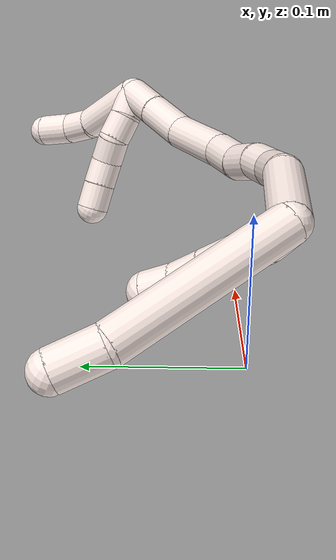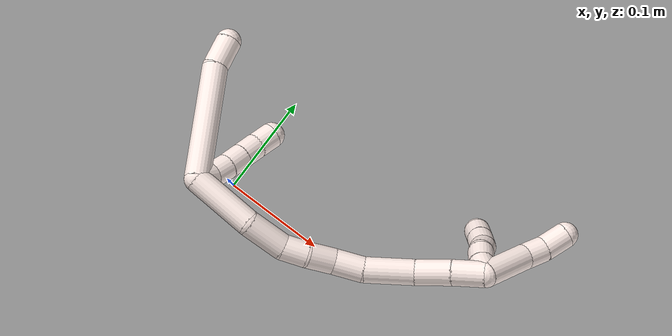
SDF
<sdf version="1.7">
 <world name="default">
  <model name="11">
   <static>0</static>
   <link name="11">
    <collision name="collision-cylinder-e_1_2_8">
     <pose>-0.033128 0.040135 -0.028809 -2.19338 -0.590683 1.07035</pose>
     <geometry><cylinder><radius>0.0125</radius><length>0.118966</length></cylinder></geometry>
     <surface>
      <friction><ode><mu>1.16</mu><mu2>1.16</mu2><slip1>0</slip1><slip2>0</slip2></ode></friction>
      <contact><ode><kp>1e+06</kp><kd>1</kd><max_vel>0</max_vel><min_depth>0.001</min_depth></ode></contact>
     </surface>
    </collision>
    <visual name="visual-cylinder-e_1_2_8">
     <pose>-0.033128 0.040135 -0.028809 -2.19338 -0.590683 1.07035</pose>
     <geometry><cylinder><radius>0.0125</radius><length>0.118966</length></cylinder></geometry>
     <material><ambient>1 0.933333 0.909804 1</ambient></material>
    </visual>
    <collision name="collision-cylinder-e_2_8_6">
     <pose>-0.070904 0.091962 -0.0667 -2.23116 -0.304217 0.606971</pose>
     <geometry><cylinder><radius>0.0125</radius><length>0.031034</length></cylinder></geometry>
     <surface>
      <friction><ode><mu>1.16</mu><mu2>1.16</mu2><slip1>0</slip1><slip2>0</slip2></ode></friction>
      <contact><ode><kp>1e+06</kp><kd>1</kd><max_vel>0</max_vel><min_depth>0.001</min_depth></ode></contact>
     </surface>
    </collision>
    <visual name="visual-cylinder-e_2_8_6">
     <pose>-0.070904 0.091962 -0.0667 -2.23116 -0.304217 0.606971</pose>
     <geometry><cylinder><radius>0.0125</radius><length>0.031034</length></cylinder></geometry>
     <material><ambient>1 0.933333 0.909804 1</ambient></material>
    </visual>
    <collision name="collision-cylinder-e_1_2_9">
     <pose>0.0018 0.002648 -0.009474 -2.86903 0.180939 -1.16889</pose>
     <geometry><cylinder><radius>0.0125</radius><length>0.02</length></cylinder></geometry>
     <surface>
      <friction><ode><mu>1.16</mu><mu2>1.16</mu2><slip1>0</slip1><slip2>0</slip2></ode></friction>
      <contact><ode><kp>1e+06</kp><kd>1</kd><max_vel>0</max_vel><min_depth>0.001</min_depth></ode></contact>
     </surface>
    </collision>
    <visual name="visual-cylinder-e_1_2_9">
     <pose>0.0018 0.002648 -0.009474 -2.86903 0.180939 -1.16889</pose>
     <geometry><cylinder><radius>0.0125</radius><length>0.02</length></cylinder></geometry>
     <material><ambient>1 0.933333 0.909804 1</ambient></material>
    </visual>
    <collision name="collision-cylinder-e_2_9_10">
     <pose>0.004571 0.010765 -0.027262 -2.55978 0.097302 -0.322427</pose>
     <geometry><cylinder><radius>0.0125</radius><length>0.02</length></cylinder></geometry>
     <surface>
      <friction><ode><mu>1.16</mu><mu2>1.16</mu2><slip1>0</slip1><slip2>0</slip2></ode></friction>
      <contact><ode><kp>1e+06</kp><kd>1</kd><max_vel>0</max_vel><min_depth>0.001</min_depth></ode></contact>
     </surface>
    </collision>
    <visual name="visual-cylinder-e_2_9_10">
     <pose>0.004571 0.010765 -0.027262 -2.55978 0.097302 -0.322427</pose>
     <geometry><cylinder><radius>0.0125</radius><length>0.02</length></cylinder></geometry>
     <material><ambient>1 0.933333 0.909804 1</ambient></material>
    </visual>
    <collision name="collision-cylinder-e_3_10_11">
     <pose>0.006087 0.022139 -0.04363 -2.50888 0.054487 -0.166106</pose>
     <geometry><cylinder><radius>0.0125</radius><length>0.02</length></cylinder></geometry>
     <surface>
      <friction><ode><mu>1.16</mu><mu2>1.16</mu2><slip1>0</slip1><slip2>0</slip2></ode></friction>
      <contact><ode><kp>1e+06</kp><kd>1</kd><max_vel>0</max_vel><min_depth>0.001</min_depth></ode></contact>
     </surface>
    </collision>
    <visual name="visual-cylinder-e_3_10_11">
     <pose>0.006087 0.022139 -0.04363 -2.50888 0.054487 -0.166106</pose>
     <geometry><cylinder><radius>0.0125</radius><length>0.02</length></cylinder></geometry>
     <material><ambient>1 0.933333 0.909804 1</ambient></material>
    </visual>
    <collision name="collision-cylinder-e_4_11_12">
     <pose>0.007171 0.033956 -0.05973 -2.50802 0.054022 -0.164458</pose>
     <geometry><cylinder><radius>0.0125</radius><length>0.02</length></cylinder></geometry>
     <surface>
      <friction><ode><mu>1.16</mu><mu2>1.16</mu2><slip1>0</slip1><slip2>0</slip2></ode></friction>
      <contact><ode><kp>1e+06</kp><kd>1</kd><max_vel>0</max_vel><min_depth>0.001</min_depth></ode></contact>
     </surface>
    </collision>
    <visual name="visual-cylinder-e_4_11_12">
     <pose>0.007171 0.033956 -0.05973 -2.50802 0.054022 -0.164458</pose>
     <geometry><cylinder><radius>0.0125</radius><length>0.02</length></cylinder></geometry>
     <material><ambient>1 0.933333 0.909804 1</ambient></material>
    </visual>
    <collision name="collision-cylinder-e_5_12_5">
     <pose>0.009039 0.04664 -0.075014 -2.38933 0.133143 -0.334474</pose>
     <geometry><cylinder><radius>0.0125</radius><length>0.02</length></cylinder></geometry>
     <surface>
      <friction><ode><mu>1.16</mu><mu2>1.16</mu2><slip1>0</slip1><slip2>0</slip2></ode></friction>
      <contact><ode><kp>1e+06</kp><kd>1</kd><max_vel>0</max_vel><min_depth>0.001</min_depth></ode></contact>
     </surface>
    </collision>
    <visual name="visual-cylinder-e_5_12_5">
     <pose>0.009039 0.04664 -0.075014 -2.38933 0.133143 -0.334474</pose>
     <geometry><cylinder><radius>0.0125</radius><length>0.02</length></cylinder></geometry>
     <material><ambient>1 0.933333 0.909804 1</ambient></material>
    </visual>
    <collision name="collision-cylinder-e_1_2_13">
     <pose>0.031283 -0.003079 -0.005043 2.59336 1.38412 2.48741</pose>
     <geometry><cylinder><radius>0.0125</radius><length>0.063673</length></cylinder></geometry>
     <surface>
      <friction><ode><mu>1.16</mu><mu2>1.16</mu2><slip1>0</slip1><slip2>0</slip2></ode></friction>
      <contact><ode><kp>1e+06</kp><kd>1</kd><max_vel>0</max_vel><min_depth>0.001</min_depth></ode></contact>
     </surface>
    </collision>
    <visual name="visual-cylinder-e_1_2_13">
     <pose>0.031283 -0.003079 -0.005043 2.59336 1.38412 2.48741</pose>
     <geometry><cylinder><radius>0.0125</radius><length>0.063673</length></cylinder></geometry>
     <material><ambient>1 0.933333 0.909804 1</ambient></material>
    </visual>
    <collision name="collision-cylinder-e_2_13_14">
     <pose>0.079751 -0.00842 -0.019667 2.90989 1.05057 2.74531</pose>
     <geometry><cylinder><radius>0.0125</radius><length>0.039609</length></cylinder></geometry>
     <surface>
      <friction><ode><mu>1.16</mu><mu2>1.16</mu2><slip1>0</slip1><slip2>0</slip2></ode></friction>
      <contact><ode><kp>1e+06</kp><kd>1</kd><max_vel>0</max_vel><min_depth>0.001</min_depth></ode></contact>
     </surface>
    </collision>
    <visual name="visual-cylinder-e_2_13_14">
     <pose>0.079751 -0.00842 -0.019667 2.90989 1.05057 2.74531</pose>
     <geometry><cylinder><radius>0.0125</radius><length>0.039609</length></cylinder></geometry>
     <material><ambient>1 0.933333 0.909804 1</ambient></material>
    </visual>
    <collision name="collision-cylinder-e_3_14_15">
     <pose>0.107541 -0.008039 -0.034565 -2.68063 1.06045 -2.3801</pose>
     <geometry><cylinder><radius>0.0125</radius><length>0.024309</length></cylinder></geometry>
     <surface>
      <friction><ode><mu>1.16</mu><mu2>1.16</mu2><slip1>0</slip1><slip2>0</slip2></ode></friction>
      <contact><ode><kp>1e+06</kp><kd>1</kd><max_vel>0</max_vel><min_depth>0.001</min_depth></ode></contact>
     </surface>
    </collision>
    <visual name="visual-cylinder-e_3_14_15">
     <pose>0.107541 -0.008039 -0.034565 -2.68063 1.06045 -2.3801</pose>
     <geometry><cylinder><radius>0.0125</radius><length>0.024309</length></cylinder></geometry>
     <material><ambient>1 0.933333 0.909804 1</ambient></material>
    </visual>
    <collision name="collision-cylinder-e_4_15_16">
     <pose>0.128112 -0.002755 -0.048358 -2.83921 0.843027 -2.4865</pose>
     <geometry><cylinder><radius>0.0125</radius><length>0.026691</length></cylinder></geometry>
     <surface>
      <friction><ode><mu>1.16</mu><mu2>1.16</mu2><slip1>0</slip1><slip2>0</slip2></ode></friction>
      <contact><ode><kp>1e+06</kp><kd>1</kd><max_vel>0</max_vel><min_depth>0.001</min_depth></ode></contact>
     </surface>
    </collision>
    <visual name="visual-cylinder-e_4_15_16">
     <pose>0.128112 -0.002755 -0.048358 -2.83921 0.843027 -2.4865</pose>
     <geometry><cylinder><radius>0.0125</radius><length>0.026691</length></cylinder></geometry>
     <material><ambient>1 0.933333 0.909804 1</ambient></material>
    </visual>
    <collision name="collision-cylinder-e_5_16_17">
     <pose>0.151296 0.004008 -0.062318 -2.49751 1.09218 -2.13743</pose>
     <geometry><cylinder><radius>0.0125</radius><length>0.029786</length></cylinder></geometry>
     <surface>
      <friction><ode><mu>1.16</mu><mu2>1.16</mu2><slip1>0</slip1><slip2>0</slip2></ode></friction>
      <contact><ode><kp>1e+06</kp><kd>1</kd><max_vel>0</max_vel><min_depth>0.001</min_depth></ode></contact>
     </surface>
    </collision>
    <visual name="visual-cylinder-e_5_16_17">
     <pose>0.151296 0.004008 -0.062318 -2.49751 1.09218 -2.13743</pose>
     <geometry><cylinder><radius>0.0125</radius><length>0.029786</length></cylinder></geometry>
     <material><ambient>1 0.933333 0.909804 1</ambient></material>
    </visual>
    <collision name="collision-cylinder-e_6_17_18">
     <pose>0.183831 0.019969 -0.076474 -2.20283 0.920964 -1.5486</pose>
     <geometry><cylinder><radius>0.0125</radius><length>0.048519</length></cylinder></geometry>
     <surface>
      <friction><ode><mu>1.16</mu><mu2>1.16</mu2><slip1>0</slip1><slip2>0</slip2></ode></friction>
      <contact><ode><kp>1e+06</kp><kd>1</kd><max_vel>0</max_vel><min_depth>0.001</min_depth></ode></contact>
     </surface>
    </collision>
    <visual name="visual-cylinder-e_6_17_18">
     <pose>0.183831 0.019969 -0.076474 -2.20283 0.920964 -1.5486</pose>
     <geometry><cylinder><radius>0.0125</radius><length>0.048519</length></cylinder></geometry>
     <material><ambient>1 0.933333 0.909804 1</ambient></material>
    </visual>
    <collision name="collision-cylinder-e_7_18_19">
     <pose>0.217461 0.041982 -0.087897 -1.835 0.93631 -1.1676</pose>
     <geometry><cylinder><radius>0.0125</radius><length>0.035548</length></cylinder></geometry>
     <surface>
      <friction><ode><mu>1.16</mu><mu2>1.16</mu2><slip1>0</slip1><slip2>0</slip2></ode></friction>
      <contact><ode><kp>1e+06</kp><kd>1</kd><max_vel>0</max_vel><min_depth>0.001</min_depth></ode></contact>
     </surface>
    </collision>
    <visual name="visual-cylinder-e_7_18_19">
     <pose>0.217461 0.041982 -0.087897 -1.835 0.93631 -1.1676</pose>
     <geometry><cylinder><radius>0.0125</radius><length>0.035548</length></cylinder></geometry>
     <material><ambient>1 0.933333 0.909804 1</ambient></material>
    </visual>
    <collision name="collision-cylinder-e_8_19_1">
     <pose>0.244984 0.060617 -0.093425 -1.8878 0.977453 -1.26648</pose>
     <geometry><cylinder><radius>0.0125</radius><length>0.031865</length></cylinder></geometry>
     <surface>
      <friction><ode><mu>1.16</mu><mu2>1.16</mu2><slip1>0</slip1><slip2>0</slip2></ode></friction>
      <contact><ode><kp>1e+06</kp><kd>1</kd><max_vel>0</max_vel><min_depth>0.001</min_depth></ode></contact>
     </surface>
    </collision>
    <visual name="visual-cylinder-e_8_19_1">
     <pose>0.244984 0.060617 -0.093425 -1.8878 0.977453 -1.26648</pose>
     <geometry><cylinder><radius>0.0125</radius><length>0.031865</length></cylinder></geometry>
     <material><ambient>1 0.933333 0.909804 1</ambient></material>
    </visual>
    <collision name="collision-cylinder-e_1_1_20">
     <pose>0.263806 0.080715 -0.119077 -2.6711 0.215309 -0.847192</pose>
     <geometry><cylinder><radius>0.0125</radius><length>0.052539</length></cylinder></geometry>
     <surface>
      <friction><ode><mu>1.16</mu><mu2>1.16</mu2><slip1>0</slip1><slip2>0</slip2></ode></friction>
      <contact><ode><kp>1e+06</kp><kd>1</kd><max_vel>0</max_vel><min_depth>0.001</min_depth></ode></contact>
     </surface>
    </collision>
    <visual name="visual-cylinder-e_1_1_20">
     <pose>0.263806 0.080715 -0.119077 -2.6711 0.215309 -0.847192</pose>
     <geometry><cylinder><radius>0.0125</radius><length>0.052539</length></cylinder></geometry>
     <material><ambient>1 0.933333 0.909804 1</ambient></material>
    </visual>
    <collision name="collision-cylinder-e_2_20_21">
     <pose>0.273359 0.099181 -0.149475 -2.40431 0.369928 -0.902083</pose>
     <geometry><cylinder><radius>0.0125</radius><length>0.0218</length></cylinder></geometry>
     <surface>
      <friction><ode><mu>1.16</mu><mu2>1.16</mu2><slip1>0</slip1><slip2>0</slip2></ode></friction>
      <contact><ode><kp>1e+06</kp><kd>1</kd><max_vel>0</max_vel><min_depth>0.001</min_depth></ode></contact>
     </surface>
    </collision>
    <visual name="visual-cylinder-e_2_20_21">
     <pose>0.273359 0.099181 -0.149475 -2.40431 0.369928 -0.902083</pose>
     <geometry><cylinder><radius>0.0125</radius><length>0.0218</length></cylinder></geometry>
     <material><ambient>1 0.933333 0.909804 1</ambient></material>
    </visual>
    <collision name="collision-cylinder-e_3_21_4">
     <pose>0.280846 0.116036 -0.164181 -2.19261 0.279993 -0.535541</pose>
     <geometry><cylinder><radius>0.0125</radius><length>0.025662</length></cylinder></geometry>
     <surface>
      <friction><ode><mu>1.16</mu><mu2>1.16</mu2><slip1>0</slip1><slip2>0</slip2></ode></friction>
      <contact><ode><kp>1e+06</kp><kd>1</kd><max_vel>0</max_vel><min_depth>0.001</min_depth></ode></contact>
     </surface>
    </collision>
    <visual name="visual-cylinder-e_3_21_4">
     <pose>0.280846 0.116036 -0.164181 -2.19261 0.279993 -0.535541</pose>
     <geometry><cylinder><radius>0.0125</radius><length>0.025662</length></cylinder></geometry>
     <material><ambient>1 0.933333 0.909804 1</ambient></material>
    </visual>
    <collision name="collision-cylinder-e_1_1_22">
     <pose>0.25176 0.069846 -0.10382 -3.04149 -0.698854 2.86834</pose>
     <geometry><cylinder><radius>0.0125</radius><length>0.02</length></cylinder></geometry>
     <surface>
      <friction><ode><mu>1.16</mu><mu2>1.16</mu2><slip1>0</slip1><slip2>0</slip2></ode></friction>
      <contact><ode><kp>1e+06</kp><kd>1</kd><max_vel>0</max_vel><min_depth>0.001</min_depth></ode></contact>
     </surface>
    </collision>
    <visual name="visual-cylinder-e_1_1_22">
     <pose>0.25176 0.069846 -0.10382 -3.04149 -0.698854 2.86834</pose>
     <geometry><cylinder><radius>0.0125</radius><length>0.02</length></cylinder></geometry>
     <material><ambient>1 0.933333 0.909804 1</ambient></material>
    </visual>
    <collision name="collision-cylinder-e_2_22_23">
     <pose>0.240195 0.07237 -0.119838 -2.93528 -0.538853 2.42425</pose>
     <geometry><cylinder><radius>0.0125</radius><length>0.02</length></cylinder></geometry>
     <surface>
      <friction><ode><mu>1.16</mu><mu2>1.16</mu2><slip1>0</slip1><slip2>0</slip2></ode></friction>
      <contact><ode><kp>1e+06</kp><kd>1</kd><max_vel>0</max_vel><min_depth>0.001</min_depth></ode></contact>
     </surface>
    </collision>
    <visual name="visual-cylinder-e_2_22_23">
     <pose>0.240195 0.07237 -0.119838 -2.93528 -0.538853 2.42425</pose>
     <geometry><cylinder><radius>0.0125</radius><length>0.02</length></cylinder></geometry>
     <material><ambient>1 0.933333 0.909804 1</ambient></material>
    </visual>
    <collision name="collision-cylinder-e_3_23_24">
     <pose>0.232473 0.073981 -0.137897 3.1264 -0.262047 -3.02642</pose>
     <geometry><cylinder><radius>0.0125</radius><length>0.02</length></cylinder></geometry>
     <surface>
      <friction><ode><mu>1.16</mu><mu2>1.16</mu2><slip1>0</slip1><slip2>0</slip2></ode></friction>
      <contact><ode><kp>1e+06</kp><kd>1</kd><max_vel>0</max_vel><min_depth>0.001</min_depth></ode></contact>
     </surface>
    </collision>
    <visual name="visual-cylinder-e_3_23_24">
     <pose>0.232473 0.073981 -0.137897 3.1264 -0.262047 -3.02642</pose>
     <geometry><cylinder><radius>0.0125</radius><length>0.02</length></cylinder></geometry>
     <material><ambient>1 0.933333 0.909804 1</ambient></material>
    </visual>
    <collision name="collision-cylinder-e_4_24_25">
     <pose>0.224418 0.073993 -0.155928 -3.12268 -0.578138 3.07803</pose>
     <geometry><cylinder><radius>0.0125</radius><length>0.02</length></cylinder></geometry>
     <surface>
      <friction><ode><mu>1.16</mu><mu2>1.16</mu2><slip1>0</slip1><slip2>0</slip2></ode></friction>
      <contact><ode><kp>1e+06</kp><kd>1</kd><max_vel>0</max_vel><min_depth>0.001</min_depth></ode></contact>
     </surface>
    </collision>
    <visual name="visual-cylinder-e_4_24_25">
     <pose>0.224418 0.073993 -0.155928 -3.12268 -0.578138 3.07803</pose>
     <geometry><cylinder><radius>0.0125</radius><length>0.02</length></cylinder></geometry>
     <material><ambient>1 0.933333 0.909804 1</ambient></material>
    </visual>
    <collision name="collision-cylinder-e_5_25_3">
     <pose>0.213634 0.074044 -0.172768 3.12894 -0.560908 -3.09768</pose>
     <geometry><cylinder><radius>0.0125</radius><length>0.02</length></cylinder></geometry>
     <surface>
      <friction><ode><mu>1.16</mu><mu2>1.16</mu2><slip1>0</slip1><slip2>0</slip2></ode></friction>
      <contact><ode><kp>1e+06</kp><kd>1</kd><max_vel>0</max_vel><min_depth>0.001</min_depth></ode></contact>
     </surface>
    </collision>
    <visual name="visual-cylinder-e_5_25_3">
     <pose>0.213634 0.074044 -0.172768 3.12894 -0.560908 -3.09768</pose>
     <geometry><cylinder><radius>0.0125</radius><length>0.02</length></cylinder></geometry>
     <material><ambient>1 0.933333 0.909804 1</ambient></material>
    </visual>
    <collision name="collision-sphere-3">
     <pose>0.208314 0.073937 -0.181235 0 -0 0</pose>
     <geometry><sphere><radius>0.0125</radius></sphere></geometry>
     <surface>
      <friction><ode><mu>1.16</mu><mu2>1.16</mu2><slip1>0</slip1><slip2>0</slip2></ode></friction>
      <contact><ode><kp>1e+06</kp><kd>1</kd><max_vel>0</max_vel><min_depth>0.001</min_depth></ode></contact>
     </surface>
    </collision>
    <visual name="visual-sphere-3">
     <pose>0.208314 0.073937 -0.181235 0 -0 0</pose>
     <geometry><sphere><radius>0.0125</radius></sphere></geometry>
     <material><ambient>1 0.933333 0.909804 1</ambient></material>
    </visual>
    <collision name="collision-sphere-25">
     <pose>0.218953 0.074151 -0.164301 0 -0 0</pose>
     <geometry><sphere><radius>0.0125</radius></sphere></geometry>
     <surface>
      <friction><ode><mu>1.16</mu><mu2>1.16</mu2><slip1>0</slip1><slip2>0</slip2></ode></friction>
      <contact><ode><kp>1e+06</kp><kd>1</kd><max_vel>0</max_vel><min_depth>0.001</min_depth></ode></contact>
     </surface>
    </collision>
    <visual name="visual-sphere-25">
     <pose>0.218953 0.074151 -0.164301 0 -0 0</pose>
     <geometry><sphere><radius>0.0125</radius></sphere></geometry>
     <material><ambient>1 0.933333 0.909804 1</ambient></material>
    </visual>
    <collision name="collision-sphere-24">
     <pose>0.229882 0.073834 -0.147554 0 -0 0</pose>
     <geometry><sphere><radius>0.0125</radius></sphere></geometry>
     <surface>
      <friction><ode><mu>1.16</mu><mu2>1.16</mu2><slip1>0</slip1><slip2>0</slip2></ode></friction>
      <contact><ode><kp>1e+06</kp><kd>1</kd><max_vel>0</max_vel><min_depth>0.001</min_depth></ode></contact>
     </surface>
    </collision>
    <visual name="visual-sphere-24">
     <pose>0.229882 0.073834 -0.147554 0 -0 0</pose>
     <geometry><sphere><radius>0.0125</radius></sphere></geometry>
     <material><ambient>1 0.933333 0.909804 1</ambient></material>
    </visual>
    <collision name="collision-sphere-23">
     <pose>0.235064 0.074128 -0.128239 0 -0 0</pose>
     <geometry><sphere><radius>0.0125</radius></sphere></geometry>
     <surface>
      <friction><ode><mu>1.16</mu><mu2>1.16</mu2><slip1>0</slip1><slip2>0</slip2></ode></friction>
      <contact><ode><kp>1e+06</kp><kd>1</kd><max_vel>0</max_vel><min_depth>0.001</min_depth></ode></contact>
     </surface>
    </collision>
    <visual name="visual-sphere-23">
     <pose>0.235064 0.074128 -0.128239 0 -0 0</pose>
     <geometry><sphere><radius>0.0125</radius></sphere></geometry>
     <material><ambient>1 0.933333 0.909804 1</ambient></material>
    </visual>
    <collision name="collision-sphere-22">
     <pose>0.245327 0.070611 -0.111437 0 -0 0</pose>
     <geometry><sphere><radius>0.0125</radius></sphere></geometry>
     <surface>
      <friction><ode><mu>1.16</mu><mu2>1.16</mu2><slip1>0</slip1><slip2>0</slip2></ode></friction>
      <contact><ode><kp>1e+06</kp><kd>1</kd><max_vel>0</max_vel><min_depth>0.001</min_depth></ode></contact>
     </surface>
    </collision>
    <visual name="visual-sphere-22">
     <pose>0.245327 0.070611 -0.111437 0 -0 0</pose>
     <geometry><sphere><radius>0.0125</radius></sphere></geometry>
     <material><ambient>1 0.933333 0.909804 1</ambient></material>
    </visual>
    <collision name="collision-sphere-4">
     <pose>0.284392 0.126059 -0.171364 0 -0 0</pose>
     <geometry><sphere><radius>0.0125</radius></sphere></geometry>
     <surface>
      <friction><ode><mu>1.16</mu><mu2>1.16</mu2><slip1>0</slip1><slip2>0</slip2></ode></friction>
      <contact><ode><kp>1e+06</kp><kd>1</kd><max_vel>0</max_vel><min_depth>0.001</min_depth></ode></contact>
     </surface>
    </collision>
    <visual name="visual-sphere-4">
     <pose>0.284392 0.126059 -0.171364 0 -0 0</pose>
     <geometry><sphere><radius>0.0125</radius></sphere></geometry>
     <material><ambient>1 0.933333 0.909804 1</ambient></material>
    </visual>
    <collision name="collision-sphere-21">
     <pose>0.2773 0.106013 -0.156998 0 -0 0</pose>
     <geometry><sphere><radius>0.0125</radius></sphere></geometry>
     <surface>
      <friction><ode><mu>1.16</mu><mu2>1.16</mu2><slip1>0</slip1><slip2>0</slip2></ode></friction>
      <contact><ode><kp>1e+06</kp><kd>1</kd><max_vel>0</max_vel><min_depth>0.001</min_depth></ode></contact>
     </surface>
    </collision>
    <visual name="visual-sphere-21">
     <pose>0.2773 0.106013 -0.156998 0 -0 0</pose>
     <geometry><sphere><radius>0.0125</radius></sphere></geometry>
     <material><ambient>1 0.933333 0.909804 1</ambient></material>
    </visual>
    <collision name="collision-sphere-20">
     <pose>0.269418 0.092349 -0.141951 0 -0 0</pose>
     <geometry><sphere><radius>0.0125</radius></sphere></geometry>
     <surface>
      <friction><ode><mu>1.16</mu><mu2>1.16</mu2><slip1>0</slip1><slip2>0</slip2></ode></friction>
      <contact><ode><kp>1e+06</kp><kd>1</kd><max_vel>0</max_vel><min_depth>0.001</min_depth></ode></contact>
     </surface>
    </collision>
    <visual name="visual-sphere-20">
     <pose>0.269418 0.092349 -0.141951 0 -0 0</pose>
     <geometry><sphere><radius>0.0125</radius></sphere></geometry>
     <material><ambient>1 0.933333 0.909804 1</ambient></material>
    </visual>
    <collision name="collision-sphere-11">
     <pose>0.006631 0.028044 -0.051682 0 -0 0</pose>
     <geometry><sphere><radius>0.0125</radius></sphere></geometry>
     <surface>
      <friction><ode><mu>1.16</mu><mu2>1.16</mu2><slip1>0</slip1><slip2>0</slip2></ode></friction>
      <contact><ode><kp>1e+06</kp><kd>1</kd><max_vel>0</max_vel><min_depth>0.001</min_depth></ode></contact>
     </surface>
    </collision>
    <visual name="visual-sphere-11">
     <pose>0.006631 0.028044 -0.051682 0 -0 0</pose>
     <geometry><sphere><radius>0.0125</radius></sphere></geometry>
     <material><ambient>1 0.933333 0.909804 1</ambient></material>
    </visual>
    <collision name="collision-sphere-10">
     <pose>0.005542 0.016235 -0.035578 0 -0 0</pose>
     <geometry><sphere><radius>0.0125</radius></sphere></geometry>
     <surface>
      <friction><ode><mu>1.16</mu><mu2>1.16</mu2><slip1>0</slip1><slip2>0</slip2></ode></friction>
      <contact><ode><kp>1e+06</kp><kd>1</kd><max_vel>0</max_vel><min_depth>0.001</min_depth></ode></contact>
     </surface>
    </collision>
    <visual name="visual-sphere-10">
     <pose>0.005542 0.016235 -0.035578 0 -0 0</pose>
     <geometry><sphere><radius>0.0125</radius></sphere></geometry>
     <material><ambient>1 0.933333 0.909804 1</ambient></material>
    </visual>
    <collision name="collision-sphere-6">
     <pose>-0.075552 0.103654 -0.075781 0 -0 0</pose>
     <geometry><sphere><radius>0.0125</radius></sphere></geometry>
     <surface>
      <friction><ode><mu>1.16</mu><mu2>1.16</mu2><slip1>0</slip1><slip2>0</slip2></ode></friction>
      <contact><ode><kp>1e+06</kp><kd>1</kd><max_vel>0</max_vel><min_depth>0.001</min_depth></ode></contact>
     </surface>
    </collision>
    <visual name="visual-sphere-6">
     <pose>-0.075552 0.103654 -0.075781 0 -0 0</pose>
     <geometry><sphere><radius>0.0125</radius></sphere></geometry>
     <material><ambient>1 0.933333 0.909804 1</ambient></material>
    </visual>
    <collision name="collision-sphere-9">
     <pose>0.003599 0.005296 -0.018947 0 -0 0</pose>
     <geometry><sphere><radius>0.0125</radius></sphere></geometry>
     <surface>
      <friction><ode><mu>1.16</mu><mu2>1.16</mu2><slip1>0</slip1><slip2>0</slip2></ode></friction>
      <contact><ode><kp>1e+06</kp><kd>1</kd><max_vel>0</max_vel><min_depth>0.001</min_depth></ode></contact>
     </surface>
    </collision>
    <visual name="visual-sphere-9">
     <pose>0.003599 0.005296 -0.018947 0 -0 0</pose>
     <geometry><sphere><radius>0.0125</radius></sphere></geometry>
     <material><ambient>1 0.933333 0.909804 1</ambient></material>
    </visual>
    <collision name="collision-sphere-2">
     <geometry><sphere><radius>0.0125</radius></sphere></geometry>
     <surface>
      <friction><ode><mu>1.16</mu><mu2>1.16</mu2><slip1>0</slip1><slip2>0</slip2></ode></friction>
      <contact><ode><kp>1e+06</kp><kd>1</kd><max_vel>0</max_vel><min_depth>0.001</min_depth></ode></contact>
     </surface>
    </collision>
    <visual name="visual-sphere-2">
     <geometry><sphere><radius>0.0125</radius></sphere></geometry>
     <material><ambient>1 0.933333 0.909804 1</ambient></material>
    </visual>
    <collision name="collision-sphere-19">
     <pose>0.231775 0.052152 -0.090649 0 -0 0</pose>
     <geometry><sphere><radius>0.0125</radius></sphere></geometry>
     <surface>
      <friction><ode><mu>1.16</mu><mu2>1.16</mu2><slip1>0</slip1><slip2>0</slip2></ode></friction>
      <contact><ode><kp>1e+06</kp><kd>1</kd><max_vel>0</max_vel><min_depth>0.001</min_depth></ode></contact>
     </surface>
    </collision>
    <visual name="visual-sphere-19">
     <pose>0.231775 0.052152 -0.090649 0 -0 0</pose>
     <geometry><sphere><radius>0.0125</radius></sphere></geometry>
     <material><ambient>1 0.933333 0.909804 1</ambient></material>
    </visual>
    <collision name="collision-sphere-8">
     <pose>-0.066256 0.08027 -0.057619 0 -0 0</pose>
     <geometry><sphere><radius>0.0125</radius></sphere></geometry>
     <surface>
      <friction><ode><mu>1.16</mu><mu2>1.16</mu2><slip1>0</slip1><slip2>0</slip2></ode></friction>
      <contact><ode><kp>1e+06</kp><kd>1</kd><max_vel>0</max_vel><min_depth>0.001</min_depth></ode></contact>
     </surface>
    </collision>
    <visual name="visual-sphere-8">
     <pose>-0.066256 0.08027 -0.057619 0 -0 0</pose>
     <geometry><sphere><radius>0.0125</radius></sphere></geometry>
     <material><ambient>1 0.933333 0.909804 1</ambient></material>
    </visual>
    <collision name="collision-sphere-12">
     <pose>0.007711 0.039867 -0.067777 0 -0 0</pose>
     <geometry><sphere><radius>0.0125</radius></sphere></geometry>
     <surface>
      <friction><ode><mu>1.16</mu><mu2>1.16</mu2><slip1>0</slip1><slip2>0</slip2></ode></friction>
      <contact><ode><kp>1e+06</kp><kd>1</kd><max_vel>0</max_vel><min_depth>0.001</min_depth></ode></contact>
     </surface>
    </collision>
    <visual name="visual-sphere-12">
     <pose>0.007711 0.039867 -0.067777 0 -0 0</pose>
     <geometry><sphere><radius>0.0125</radius></sphere></geometry>
     <material><ambient>1 0.933333 0.909804 1</ambient></material>
    </visual>
    <collision name="collision-sphere-5">
     <pose>0.010366 0.053412 -0.082251 0 -0 0</pose>
     <geometry><sphere><radius>0.0125</radius></sphere></geometry>
     <surface>
      <friction><ode><mu>1.16</mu><mu2>1.16</mu2><slip1>0</slip1><slip2>0</slip2></ode></friction>
      <contact><ode><kp>1e+06</kp><kd>1</kd><max_vel>0</max_vel><min_depth>0.001</min_depth></ode></contact>
     </surface>
    </collision>
    <visual name="visual-sphere-5">
     <pose>0.010366 0.053412 -0.082251 0 -0 0</pose>
     <geometry><sphere><radius>0.0125</radius></sphere></geometry>
     <material><ambient>1 0.933333 0.909804 1</ambient></material>
    </visual>
    <collision name="collision-sphere-13">
     <pose>0.062567 -0.006159 -0.010085 0 -0 0</pose>
     <geometry><sphere><radius>0.0125</radius></sphere></geometry>
     <surface>
      <friction><ode><mu>1.16</mu><mu2>1.16</mu2><slip1>0</slip1><slip2>0</slip2></ode></friction>
      <contact><ode><kp>1e+06</kp><kd>1</kd><max_vel>0</max_vel><min_depth>0.001</min_depth></ode></contact>
     </surface>
    </collision>
    <visual name="visual-sphere-13">
     <pose>0.062567 -0.006159 -0.010085 0 -0 0</pose>
     <geometry><sphere><radius>0.0125</radius></sphere></geometry>
     <material><ambient>1 0.933333 0.909804 1</ambient></material>
    </visual>
    <collision name="collision-sphere-14">
     <pose>0.096936 -0.01068 -0.029248 0 -0 0</pose>
     <geometry><sphere><radius>0.0125</radius></sphere></geometry>
     <surface>
      <friction><ode><mu>1.16</mu><mu2>1.16</mu2><slip1>0</slip1><slip2>0</slip2></ode></friction>
      <contact><ode><kp>1e+06</kp><kd>1</kd><max_vel>0</max_vel><min_depth>0.001</min_depth></ode></contact>
     </surface>
    </collision>
    <visual name="visual-sphere-14">
     <pose>0.096936 -0.01068 -0.029248 0 -0 0</pose>
     <geometry><sphere><radius>0.0125</radius></sphere></geometry>
     <material><ambient>1 0.933333 0.909804 1</ambient></material>
    </visual>
    <collision name="collision-sphere-15">
     <pose>0.118147 -0.005398 -0.039883 0 -0 0</pose>
     <geometry><sphere><radius>0.0125</radius></sphere></geometry>
     <surface>
      <friction><ode><mu>1.16</mu><mu2>1.16</mu2><slip1>0</slip1><slip2>0</slip2></ode></friction>
      <contact><ode><kp>1e+06</kp><kd>1</kd><max_vel>0</max_vel><min_depth>0.001</min_depth></ode></contact>
     </surface>
    </collision>
    <visual name="visual-sphere-15">
     <pose>0.118147 -0.005398 -0.039883 0 -0 0</pose>
     <geometry><sphere><radius>0.0125</radius></sphere></geometry>
     <material><ambient>1 0.933333 0.909804 1</ambient></material>
    </visual>
    <collision name="collision-sphere-16">
     <pose>0.138077 -0.000111 -0.056833 0 -0 0</pose>
     <geometry><sphere><radius>0.0125</radius></sphere></geometry>
     <surface>
      <friction><ode><mu>1.16</mu><mu2>1.16</mu2><slip1>0</slip1><slip2>0</slip2></ode></friction>
      <contact><ode><kp>1e+06</kp><kd>1</kd><max_vel>0</max_vel><min_depth>0.001</min_depth></ode></contact>
     </surface>
    </collision>
    <visual name="visual-sphere-16">
     <pose>0.138077 -0.000111 -0.056833 0 -0 0</pose>
     <geometry><sphere><radius>0.0125</radius></sphere></geometry>
     <material><ambient>1 0.933333 0.909804 1</ambient></material>
    </visual>
    <collision name="collision-sphere-17">
     <pose>0.164516 0.008126 -0.067802 0 -0 0</pose>
     <geometry><sphere><radius>0.0125</radius></sphere></geometry>
     <surface>
      <friction><ode><mu>1.16</mu><mu2>1.16</mu2><slip1>0</slip1><slip2>0</slip2></ode></friction>
      <contact><ode><kp>1e+06</kp><kd>1</kd><max_vel>0</max_vel><min_depth>0.001</min_depth></ode></contact>
     </surface>
    </collision>
    <visual name="visual-sphere-17">
     <pose>0.164516 0.008126 -0.067802 0 -0 0</pose>
     <geometry><sphere><radius>0.0125</radius></sphere></geometry>
     <material><ambient>1 0.933333 0.909804 1</ambient></material>
    </visual>
    <collision name="collision-sphere-18">
     <pose>0.203146 0.031812 -0.085146 0 -0 0</pose>
     <geometry><sphere><radius>0.0125</radius></sphere></geometry>
     <surface>
      <friction><ode><mu>1.16</mu><mu2>1.16</mu2><slip1>0</slip1><slip2>0</slip2></ode></friction>
      <contact><ode><kp>1e+06</kp><kd>1</kd><max_vel>0</max_vel><min_depth>0.001</min_depth></ode></contact>
     </surface>
    </collision>
    <visual name="visual-sphere-18">
     <pose>0.203146 0.031812 -0.085146 0 -0 0</pose>
     <geometry><sphere><radius>0.0125</radius></sphere></geometry>
     <material><ambient>1 0.933333 0.909804 1</ambient></material>
    </visual>
    <collision name="collision-sphere-1">
     <pose>0.258194 0.069081 -0.096202 0 -0 0</pose>
     <geometry><sphere><radius>0.0125</radius></sphere></geometry>
     <surface>
      <friction><ode><mu>1.16</mu><mu2>1.16</mu2><slip1>0</slip1><slip2>0</slip2></ode></friction>
      <contact><ode><kp>1e+06</kp><kd>1</kd><max_vel>0</max_vel><min_depth>0.001</min_depth></ode></contact>
     </surface>
    </collision>
    <visual name="visual-sphere-1">
     <pose>0.258194 0.069081 -0.096202 0 -0 0</pose>
     <geometry><sphere><radius>0.0125</radius></sphere></geometry>
     <material><ambient>1 0.933333 0.909804 1</ambient></material>
    </visual>
    <inertial>
     <pose>0.113139 0.04044 -0.069642 0 -0 0</pose>
     <mass>0.75</mass>
     <inertia>
      <ixx>0.000161</ixx>
      <ixy>0</ixy>
      <ixz>0</ixz>
      <iyy>0.000164</iyy>
      <iyz>0</iyz>
      <izz>-0.000128</izz>
     </inertia>
    </inertial>
   </link>
   <pose>-0.022002 -0.017234 0.105416 0.33448 -0.240307 -0.01732</pose>
  </model>
 </world>
</sdf>
